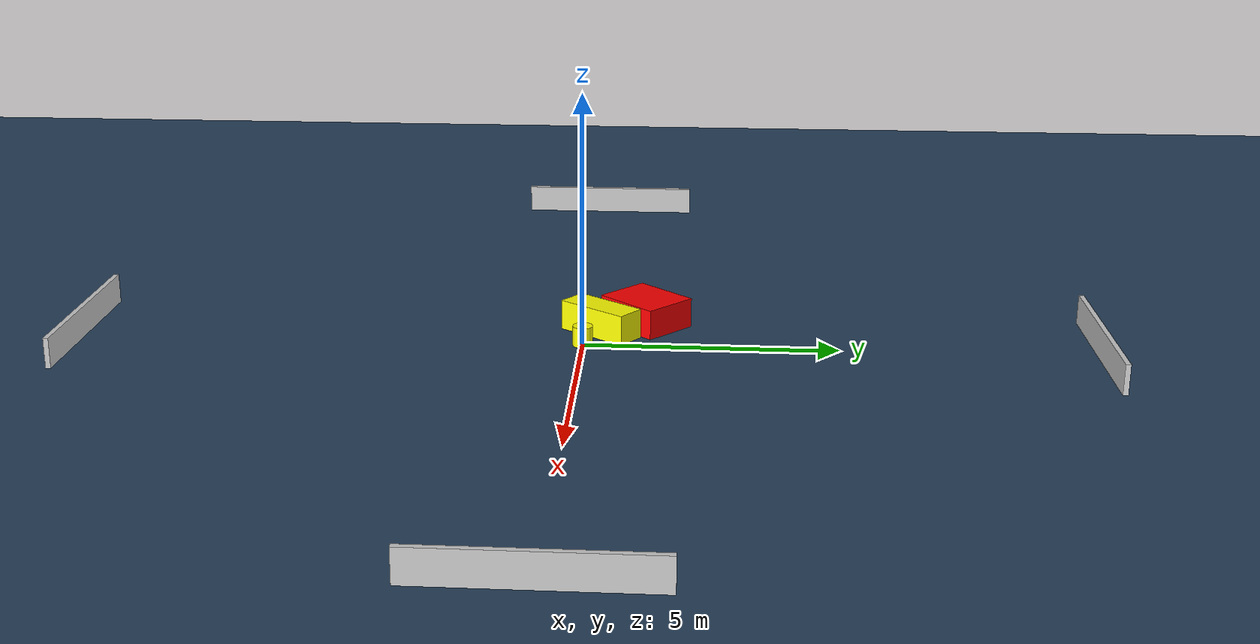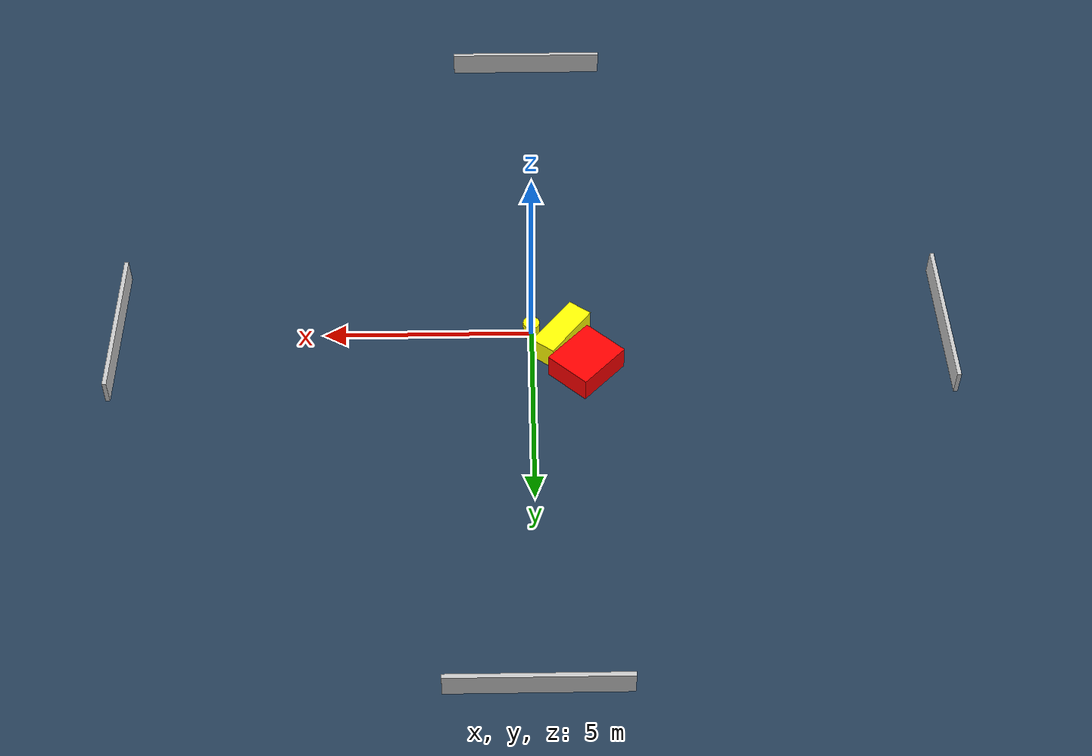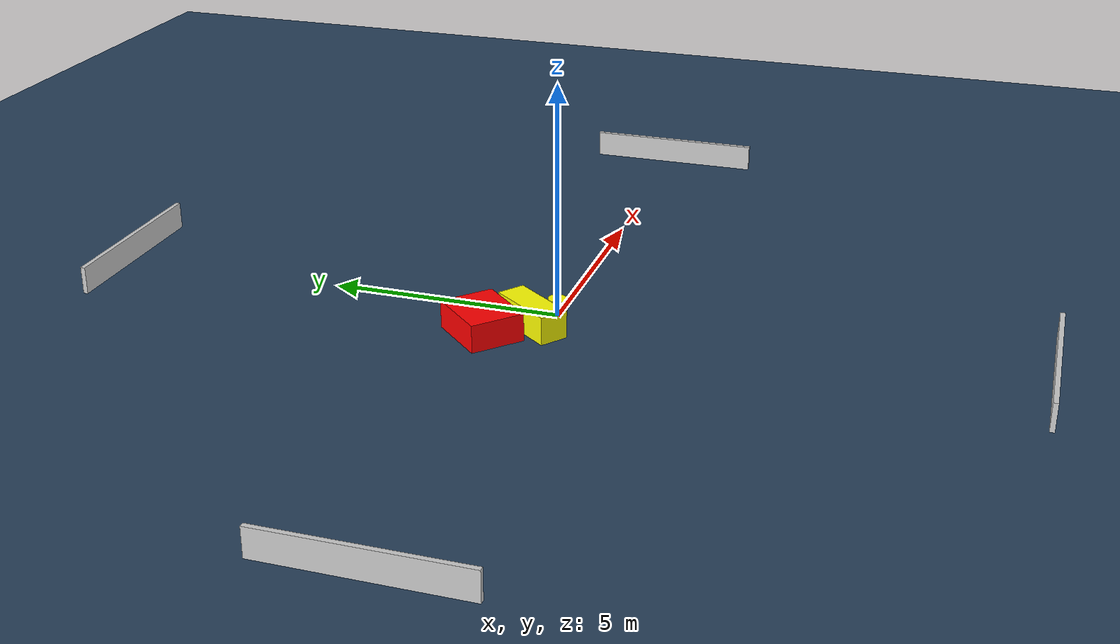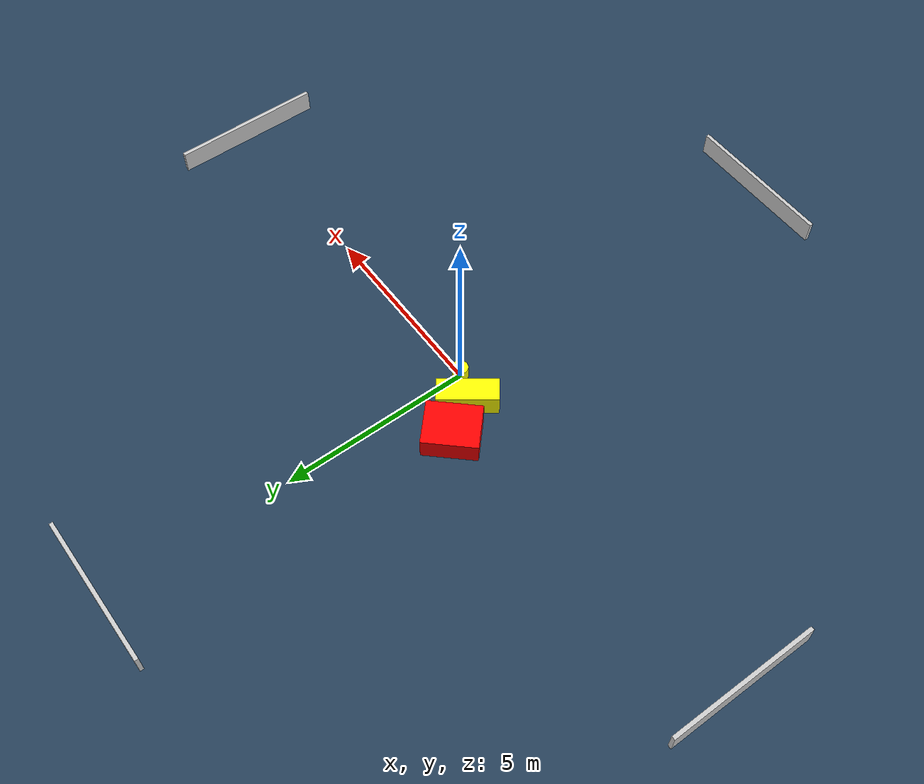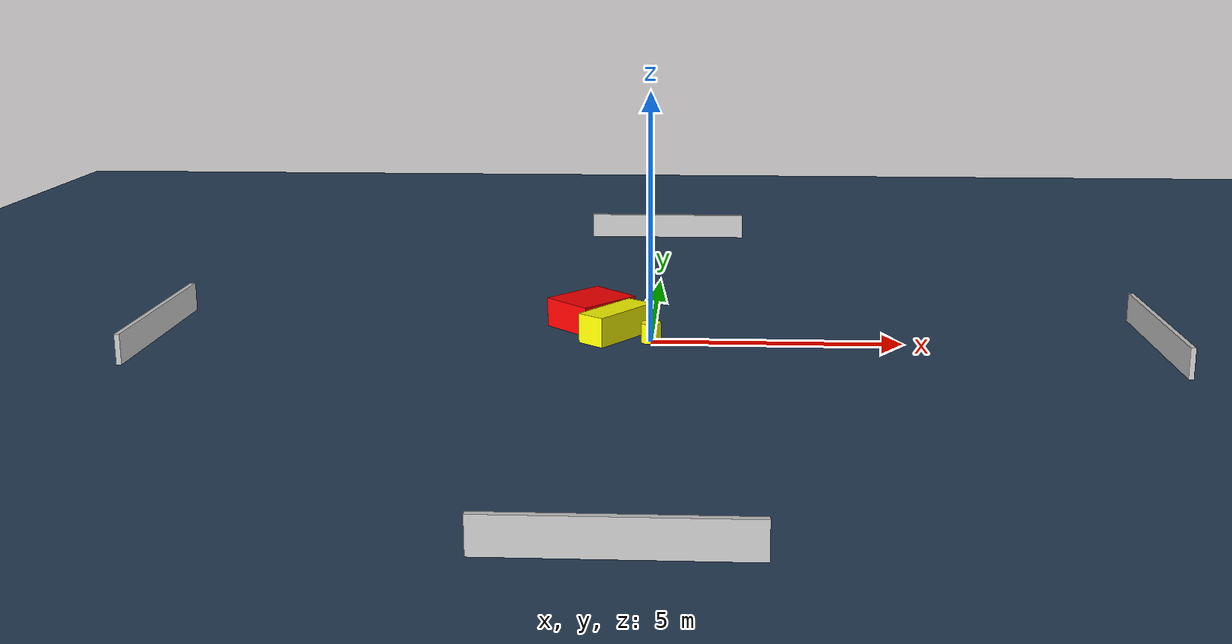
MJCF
<?xml version="1.0" ?>
<mujoco model="generated_environment">
  <option timestep="0.01" integrator="RK4" cone="elliptic"/>
  <default>
    <geom density="1"/>
  </default>
  <asset>
    <texture builtin="gradient" height="3072" name="skybox" rgb1="0.3 0.5 0.7" rgb2="0 0 0" type="skybox" width="512"/>
    <texture builtin="checker" height="300" name="groundplane" rgb1="0.2 0.3 0.4" rgb2="0.1 0.2 0.3" type="2d" width="300"/>
    <material name="groundplane" reflectance="0.2" texrepeat="5 5" texture="groundplane"/>
  </asset>
  <worldbody>
    <light dir="0 0 -1" directional="true" pos="0 0 1.5"/>
    <geom condim="3" friction="0.5 0.005 0.001" material="groundplane" name="floor" pos="0 0 0" size="0 0 0.05" type="plane"/>
    <body name="walls">
      <geom name="wall_1" condim="4" pos="-10.0 0.0 0.3" rgba="0.800000011920929 0.800000011920929 0.800000011920929 1.0" size="0.05 2.0 0.3" type="box"/>
      <geom name="wall_2" condim="4" pos="10.0 0.0 0.3" rgba="0.800000011920929 0.800000011920929 0.800000011920929 1.0" size="0.05 2.0 0.3" type="box"/>
      <geom name="wall_3" condim="4" pos="0.0 -10.0 0.3" rgba="0.800000011920929 0.800000011920929 0.800000011920929 1.0" size="2.0 0.05 0.3" type="box"/>
      <geom name="wall_4" condim="4" pos="0.0 10.0 0.3" rgba="0.800000011920929 0.800000011920929 0.800000011920929 1.0" size="2.0 0.05 0.3" type="box"/>
    </body>
    <body name="robot">
      <joint name="joint_x" type="slide" pos="0 0 0" axis="1 0 0"/>
      <joint name="joint_y" type="slide" pos="0 0 0" axis="0 1 0"/>
      <geom name="robot" type="cylinder" pos="0.0 0.0 0.2" size="0.2 0.2 0.0" mass="5.0" friction="1.0 0.005 0.0001" condim="4" rgba="1.0 1.0 0.0 1.0"/>
    </body>
    <body name="obstacle_1_movable">
      <geom name="obstacle_1_movable" condim="4" pos="-0.7215307894178852 0.31514231022964684 0.3" euler="0 0 233.04826902849797" friction="0.0 0.005 0.001" rgba="1.0 1.0 0.0 1.0" size="0.7733165709707439 0.30644604635134015 0.3" type="box" mass="0.1"/>
      <joint type="free"/>
    </body>
    <body name="obstacle_2_static">
      <geom name="obstacle_2_static" condim="4" pos="-1.2874196035601688 1.1976211543835658 0.3" euler="0 0 46.99576558579987" friction="0.0 0.005 0.001" rgba="1.0 0.0 0.0 1.0" size="0.7001820405621655 0.5870216465299355 0.3" type="box"/>
    </body>
  </worldbody>
  <actuator>
    <motor name="actuator_x" joint="joint_x" gear="1" ctrlrange="-1 1"/>
    <motor name="actuator_y" joint="joint_y" gear="1" ctrlrange="-1 1"/>
  </actuator>
</mujoco>
